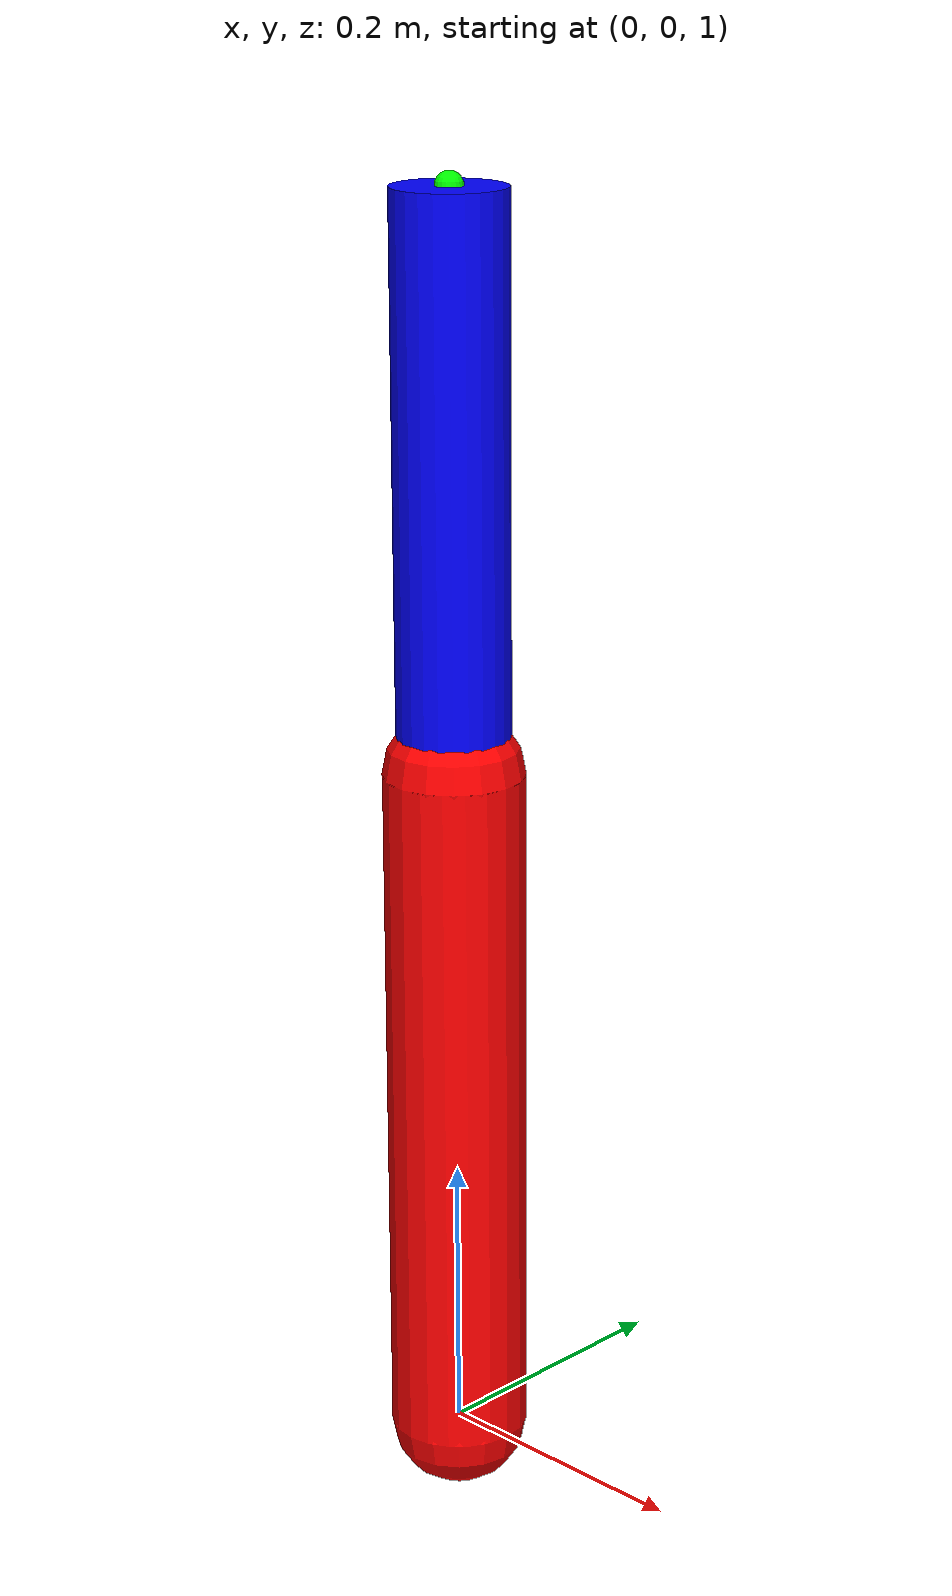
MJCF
<mujoco model="two_link_arm">
  <compiler angle="radian" coordinate="local" inertiafromgeom="false"/>
  <option timestep="0.002" gravity="0 0 -9.81"/>
  <asset>
    <material name="red" rgba="1 0 0 1"/>
    <material name="blue" rgba="0 0 1 1" specular="0.5" shininess="0.25"/>
    <mesh name="upper" file="upper.stl" scale="0.001 0.001 0.001"/>
  </asset>
  <worldbody>
    <body name="upper_arm" pos="0 0 1">
      <inertial mass="1" pos="0 0 0.25" diaginertia="0.1 0.1 0.01"/>
      <joint name="shoulder" type="hinge" axis="0 1 0" range="-1.57 1.57" damping="0.5"/>
      <geom name="upper_geom" type="capsule" size="0.05 0.25" pos="0 0 0.25" material="red"/>
      <body name="forearm" pos="0 0 0.5">
        <inertial mass="0.8" pos="0 0 0.2" fullinertia="0.05 0.05 0.005 0 0 0"/>
        <joint name="elbow" type="hinge" axis="0 1 0" range="0 2.5" damping="0.3"/>
        <geom type="cylinder" size="0.04 0.2" pos="0 0 0.2" material="blue"/>
        <site name="end_effector" pos="0 0 0.4" size="0.01" rgba="0 1 0 1"/>
      </body>
    </body>
  </worldbody>
  <actuator>
    <motor joint="shoulder" name="shoulder_motor"/>
    <motor joint="elbow" name="elbow_motor"/>
  </actuator>
</mujoco>
